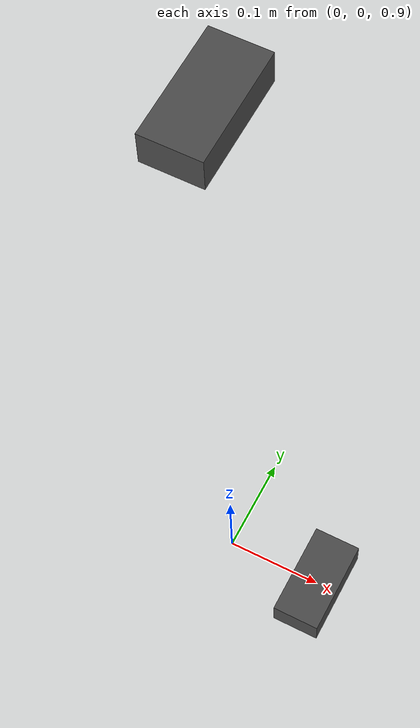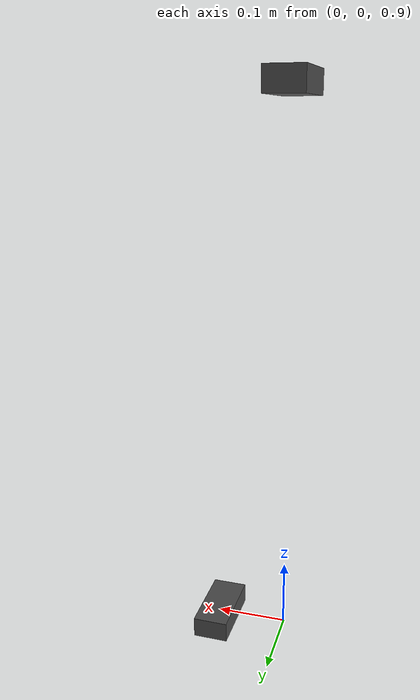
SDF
<?xml version="1.0" ?>
<sdf version="1.7">
  <model name="humanoid_depth_camera_sensor">
    <!-- Depth camera sensor configuration for humanoid robot -->
    <!-- Positioned on the head for visual perception and navigation -->
    <link name="depth_camera_link">
      <pose>0.0 0.0 1.65 0 0 0</pose> <!-- Positioned slightly below head level -->
      <inertial>
        <mass>0.1</mass>
        <inertia>
          <ixx>0.0001</ixx>
          <ixy>0</ixy>
          <ixz>0</ixz>
          <iyy>0.0001</iyy>
          <iyz>0</iyz>
          <izz>0.0001</izz>
        </inertia>
      </inertial>

      <!-- Depth camera collision geometry -->
      <collision name="depth_camera_collision">
        <geometry>
          <box>
            <size>0.05 0.1 0.03</size>
          </box>
        </geometry>
      </collision>

      <!-- Depth camera visual representation -->
      <visual name="depth_camera_visual">
        <geometry>
          <box>
            <size>0.05 0.1 0.03</size>
          </box>
        </geometry>
        <material>
          <ambient>0.2 0.2 0.2 1</ambient>
          <diffuse>0.3 0.3 0.3 1</diffuse>
          <specular>0.8 0.8 0.8 1</specular>
        </material>
      </visual>

      <!-- Depth camera sensor definition -->
      <sensor name="humanoid_depth_camera" type="depth">
        <pose>0 0 0 0 0 0</pose>
        <camera>
          <!-- Camera parameters -->
          <horizontal_fov>1.047</horizontal_fov>  <!-- 60 degrees -->
          <image>
            <width>640</width>
            <height>480</height>
            <format>R8G8B8</format>
          </image>
          <clip>
            <near>0.1</near>  <!-- Near clipping distance (m) -->
            <far>10.0</far>   <!-- Far clipping distance (m) -->
          </clip>
          <noise>
            <type>gaussian</type>
            <mean>0.0</mean>
            <stddev>0.007</stddev>
          </noise>
        </camera>
        <always_on>true</always_on>
        <update_rate>30.0</update_rate> <!-- 30 Hz update rate for real-time perception -->
        <plugin name="camera_controller" filename="libgazebo_ros_openni_kinect.so">
          <ros>
            <namespace>/humanoid</namespace>
            <remapping>~/rgb/image_raw:=camera/color/image_raw</remapping>
            <remapping>~/depth/image_raw:=camera/depth/image_raw</remapping>
            <remapping>~/depth/points:=camera/depth/points</remapping>
            <remapping>~/rgb/camera_info:=camera/color/camera_info</remapping>
          </ros>
          <frame_name>depth_camera_link</frame_name>
          <baseline>0.1</baseline>
          <distortion_k1>0.0</distortion_k1>
          <distortion_k2>0.0</distortion_k2>
          <distortion_k3>0.0</distortion_k3>
          <distortion_t1>0.0</distortion_t1>
          <distortion_t2>0.0</distortion_t2>
        </plugin>
      </sensor>
    </link>

    <!-- Alternative depth camera configuration for torso-mounted sensor -->
    <link name="torso_depth_camera_link">
      <pose>0.1 0.0 0.9 0 0 0</pose> <!-- Positioned on torso, forward-facing -->
      <inertial>
        <mass>0.1</mass>
        <inertia>
          <ixx>0.0001</ixx>
          <ixy>0</ixy>
          <ixz>0</ixz>
          <iyy>0.0001</iyy>
          <iyz>0</iyz>
          <izz>0.0001</izz>
        </inertia>
      </inertial>

      <!-- Torso-mounted depth camera collision geometry -->
      <collision name="torso_depth_camera_collision">
        <geometry>
          <box>
            <size>0.05 0.1 0.03</size>
          </box>
        </geometry>
      </collision>

      <!-- Torso-mounted depth camera visual representation -->
      <visual name="torso_depth_camera_visual">
        <geometry>
          <box>
            <size>0.05 0.1 0.03</size>
          </box>
        </geometry>
        <material>
          <ambient>0.2 0.2 0.2 1</ambient>
          <diffuse>0.3 0.3 0.3 1</diffuse>
          <specular>0.8 0.8 0.8 1</specular>
        </material>
      </visual>

      <!-- Torso-mounted depth camera sensor definition -->
      <sensor name="torso_depth_camera" type="depth">
        <pose>0 0 0 0 0 0</pose>
        <camera>
          <!-- Camera parameters optimized for torso position -->
          <horizontal_fov>1.047</horizontal_fov>  <!-- 60 degrees -->
          <image>
            <width>320</width>
            <height>240</height>
            <format>R8G8B8</format>
          </image>
          <clip>
            <near>0.1</near>  <!-- Near clipping distance (m) -->
            <far>8.0</far>    <!-- Far clipping distance (m) -->
          </clip>
          <noise>
            <type>gaussian</type>
            <mean>0.0</mean>
            <stddev>0.01</stddev>
          </noise>
        </camera>
        <always_on>true</always_on>
        <update_rate>15.0</update_rate> <!-- 15 Hz update rate for torso camera -->
        <plugin name="torso_camera_controller" filename="libgazebo_ros_openni_kinect.so">
          <ros>
            <namespace>/humanoid</namespace>
            <remapping>~/rgb/image_raw:=torso_camera/color/image_raw</remapping>
            <remapping>~/depth/image_raw:=torso_camera/depth/image_raw</remapping>
            <remapping>~/depth/points:=torso_camera/depth/points</remapping>
            <remapping>~/rgb/camera_info:=torso_camera/color/camera_info</remapping>
          </ros>
          <frame_name>torso_depth_camera_link</frame_name>
          <baseline>0.1</baseline>
          <distortion_k1>0.0</distortion_k1>
          <distortion_k2>0.0</distortion_k2>
          <distortion_k3>0.0</distortion_k3>
          <distortion_t1>0.0</distortion_t1>
          <distortion_t2>0.0</distortion_t2>
        </plugin>
      </sensor>
    </link>

    <!-- Joint to connect depth camera to the robot (example connection to head) -->
    <joint name="depth_camera_to_head" type="fixed">
      <parent>head_link</parent> <!-- This would connect to actual head link in full robot model -->
      <child>depth_camera_link</child>
      <pose>0.05 0 0 0 0 0</pose> <!-- Offset slightly forward on head -->
    </joint>

    <!-- Joint to connect torso depth camera to the robot -->
    <joint name="torso_depth_camera_to_torso" type="fixed">
      <parent>torso_link</parent> <!-- This would connect to actual torso link in full robot model -->
      <child>torso_depth_camera_link</child>
      <pose>0.1 0 0 0 0 0</pose> <!-- Offset slightly forward on torso -->
    </joint>
  </model>
</sdf>
